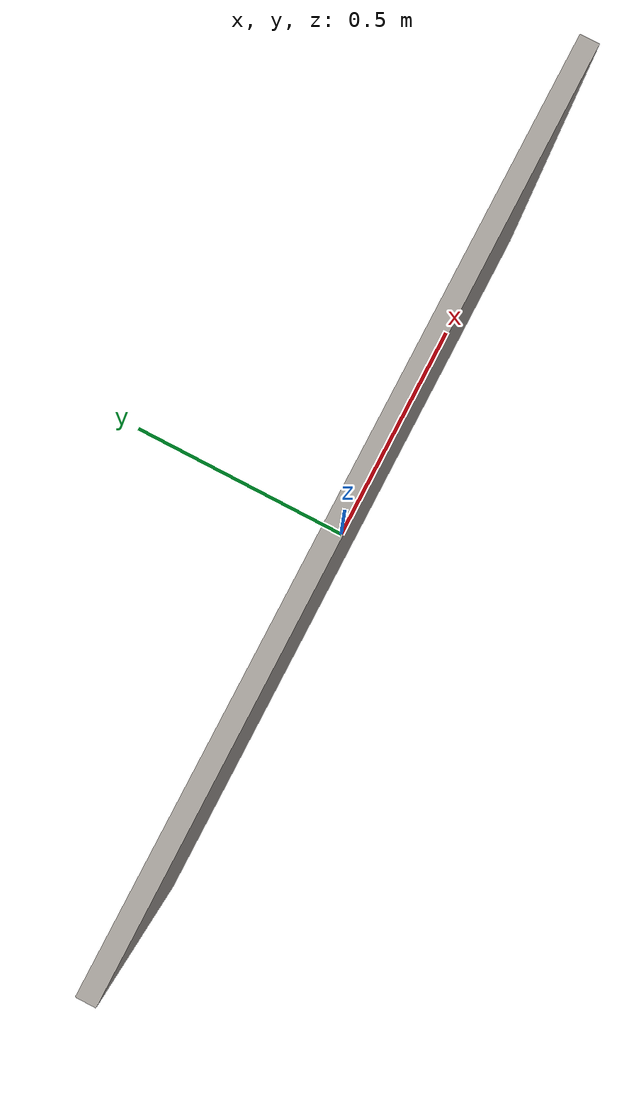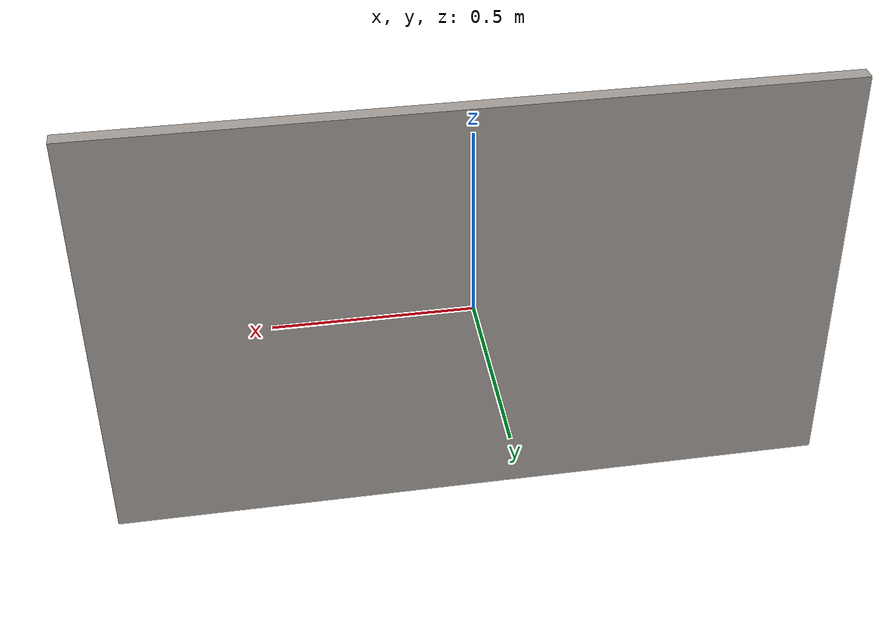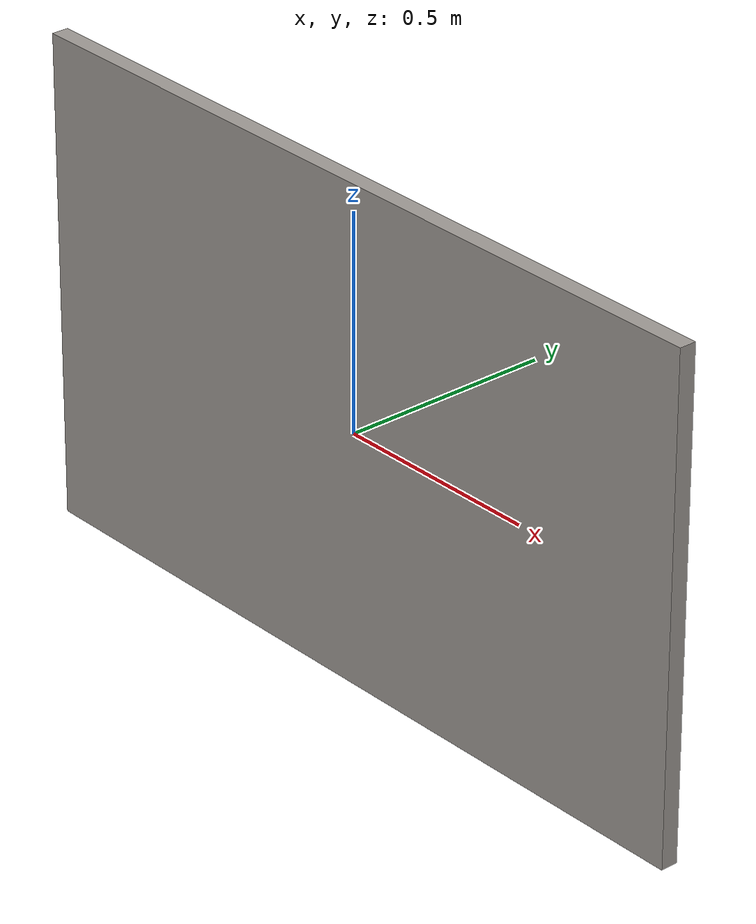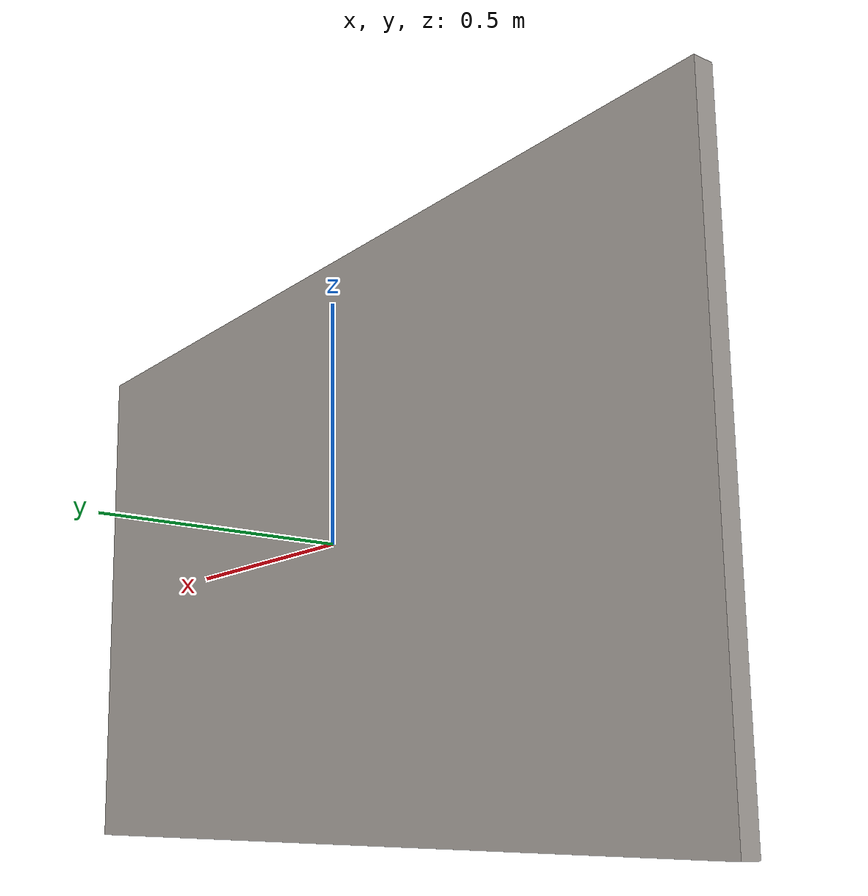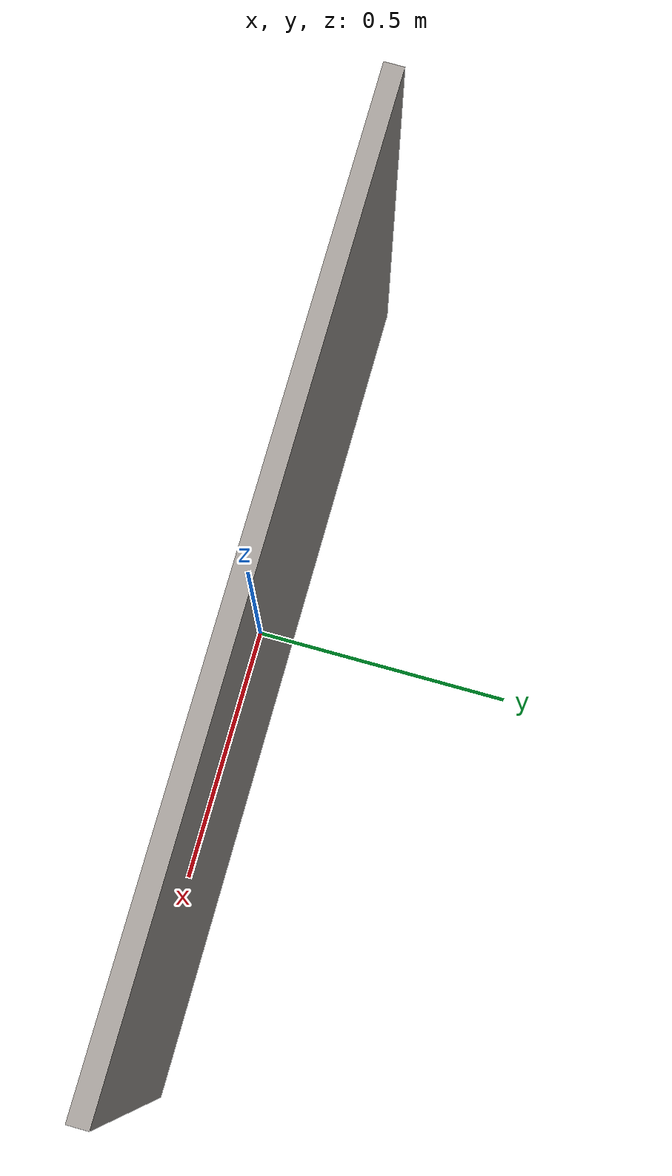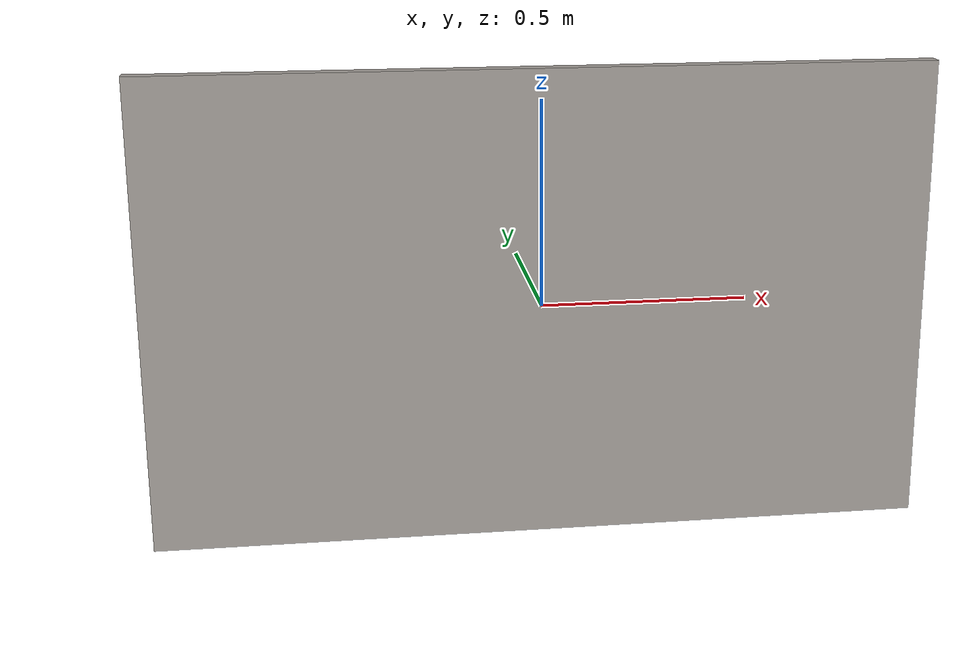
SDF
<?xml version="1.0"?>
<sdf version="1.6">
  <model name="whiteboard">
    <static>true</static>
    <link name="link">
      <collision name="col">
        <geometry>
          <box>
            <size>1.9 0.04 1.15</size>
          </box>
        </geometry>
      </collision>
      <visual name="vis">
        <geometry>
          <box>
            <size>1.9 0.04 1.15</size>
          </box>
        </geometry>
        <material>
          <ambient>0.62 0.6 0.58 1</ambient>
          <diffuse>0.62 0.6 0.58 1</diffuse>
        </material>
      </visual>
    </link>
  </model>
</sdf>
